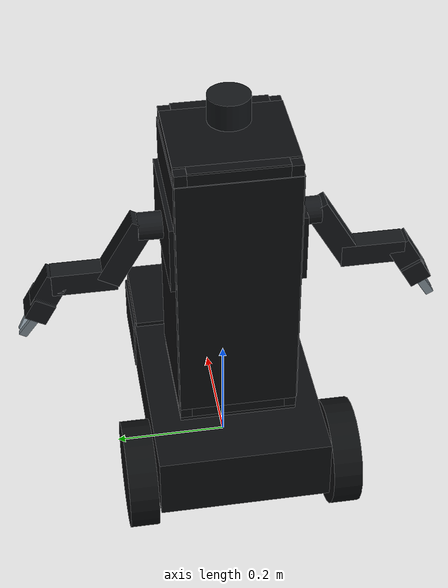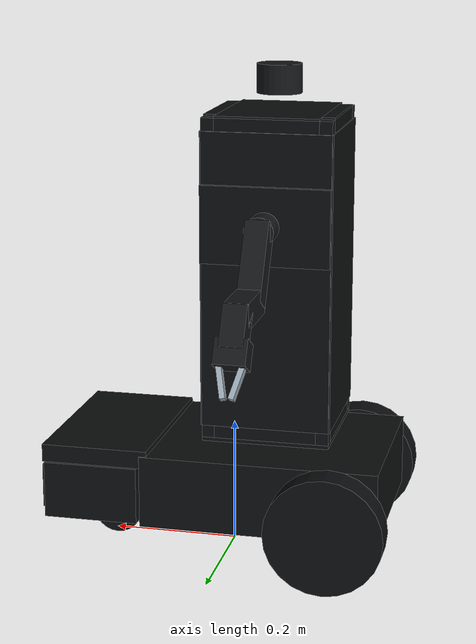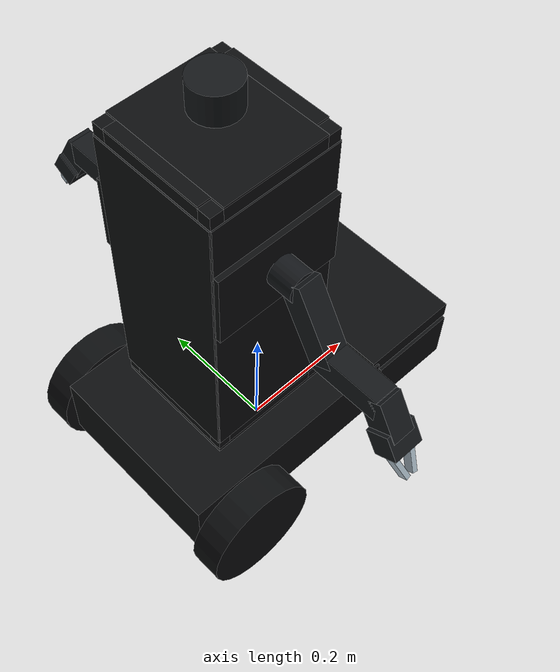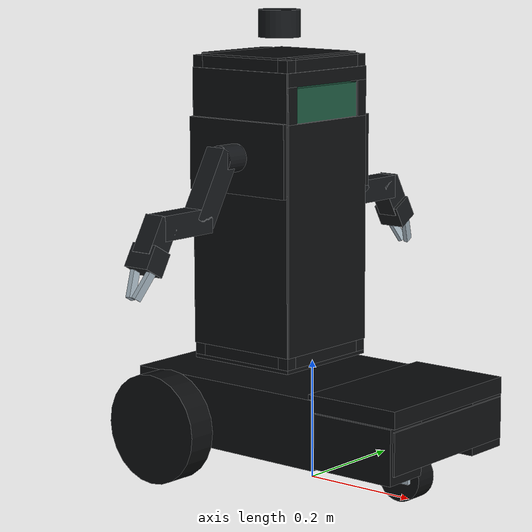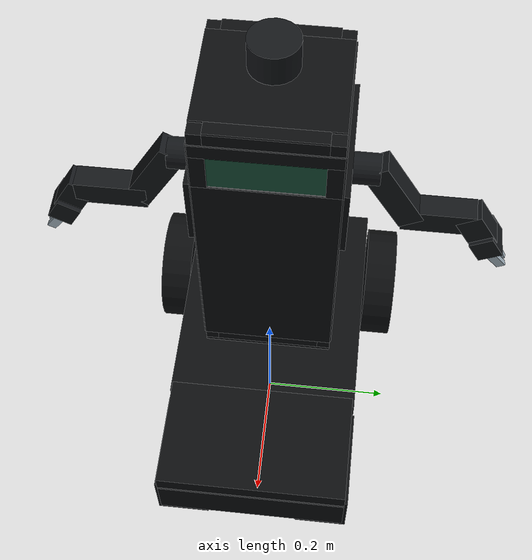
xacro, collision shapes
<?xml version="1.0"?>
<robot xmlns:xacro="http://www.ros.org/wiki/xacro" name="underbot">
  <xacro:include filename="base.xacro" />
  <xacro:underbot_base />
  <xacro:include filename="sensors.xacro" />
  <xacro:underbot_sensors />
  <xacro:include filename="arm.xacro" />
  <xacro:underbot_arm />
</robot>

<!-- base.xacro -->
<robot xmlns:xacro="http://www.ros.org/wiki/xacro">
  <xacro:macro name="underbot_base">
    <link name="base_link">
      <inertial>
        <origin xyz="-0.0598350198234 5.40649302867e-05 0.274770185411" rpy="0 0 0" />
        <mass value="14.8710078" />
        <inertia ixx="0.627048766532" ixy="8.172644062e-06" ixz="0.0129279632493" iyy="0.700954782211" iyz="-5.60167709298e-05" izz="0.256652248656" />
      </inertial>
      <visual name="base_link_visual_0">
        <origin xyz="0 0 0" rpy="0 0 0" />
        <geometry>
          <mesh filename="package://underbot_description/meshes/base_link.stl" scale="1 1 1" />
        </geometry>
        <material name="matte_black">
          <color rgba="0.045 0.05 0.055 1" />
        </material>
      </visual>
      <visual name="base_link_visual_1">
        <origin xyz="0 0 0" rpy="0 0 0" />
        <geometry>
          <mesh filename="package://underbot_description/meshes/base_link_worx_orange.stl" scale="1 1 1" />
        </geometry>
        <material name="worx_orange">
          <color rgba="0.96 0.22 0.015 1" />
        </material>
      </visual>
      <visual name="base_link_visual_2">
        <origin xyz="0 0 0" rpy="0 0 0" />
        <geometry>
          <mesh filename="package://underbot_description/meshes/base_link_servo_black.stl" scale="1 1 1" />
        </geometry>
        <material name="servo_black">
          <color rgba="0.075 0.085 0.095 1" />
        </material>
      </visual>
      <visual name="base_link_visual_3">
        <origin xyz="0 0 0" rpy="0 0 0" />
        <geometry>
          <mesh filename="package://underbot_description/meshes/base_link_control_red.stl" scale="1 1 1" />
        </geometry>
        <material name="control_red">
          <color rgba="0.65 0.015 0.015 1" />
        </material>
      </visual>
      <visual name="base_link_visual_4">
        <origin xyz="0 0 0" rpy="0 0 0" />
        <geometry>
          <mesh filename="package://underbot_description/meshes/base_link_aluminium.stl" scale="1 1 1" />
        </geometry>
        <material name="aluminium">
          <color rgba="0.62 0.68 0.72 1" />
        </material>
      </visual>
      <visual name="base_link_visual_5">
        <origin xyz="0 0 0" rpy="0 0 0" />
        <geometry>
          <mesh filename="package://underbot_description/meshes/base_link_polycarbonate.stl" scale="1 1 1" />
        </geometry>
        <material name="polycarbonate">
          <color rgba="0.38 0.55 0.6 0.5" />
        </material>
      </visual>
      <visual name="base_link_visual_6">
        <origin xyz="0 0 0" rpy="0 0 0" />
        <geometry>
          <mesh filename="package://underbot_description/meshes/base_link_pcb_green.stl" scale="1 1 1" />
        </geometry>
        <material name="pcb_green">
          <color rgba="0.1 0.32 0.23 1" />
        </material>
      </visual>
      <collision name="base_link_rear_chassis">
        <origin xyz="-0.0675 0 0.1225" rpy="0 0 0" />
        <geometry>
          <box size="0.375 0.296 0.115" />
        </geometry>
      </collision>
      <collision name="base_link_nose_side_-1">
        <origin xyz="0.2 -0.11 0.115" rpy="0 0 0" />
        <geometry>
          <box size="0.15 0.08 0.09" />
        </geometry>
      </collision>
      <collision name="base_link_nose_side_1">
        <origin xyz="0.2 0.11 0.115" rpy="0 0 0" />
        <geometry>
          <box size="0.15 0.08 0.09" />
        </geometry>
      </collision>
      <collision name="base_link_nose_upper">
        <origin xyz="0.194 0 0.174" rpy="0 0 0" />
        <geometry>
          <box size="0.17 0.29 0.028" />
        </geometry>
      </collision>
      <collision name="base_link_front_grille">
        <origin xyz="0.2775 0 0.12" rpy="0 0 0" />
        <geometry>
          <box size="0.003 0.29 0.07" />
        </geometry>
      </collision>
      <collision name="base_link_chassis_adapter">
        <origin xyz="-0.07 0 0.202" rpy="0 0 0" />
        <geometry>
          <box size="0.2 0.2 0.006" />
        </geometry>
      </collision>
      <collision name="base_link_post_-0.16000000000000003_-0.09000000000000001">
        <origin xyz="-0.16 -0.09 0.455" rpy="0 0 0" />
        <geometry>
          <box size="0.02 0.02 0.5" />
        </geometry>
      </collision>
      <collision name="base_link_post_-0.16000000000000003_0.09000000000000001">
        <origin xyz="-0.16 0.09 0.455" rpy="0 0 0" />
        <geometry>
          <box size="0.02 0.02 0.5" />
        </geometry>
      </collision>
      <collision name="base_link_post_0.020000000000000004_-0.09000000000000001">
        <origin xyz="0.02 -0.09 0.455" rpy="0 0 0" />
        <geometry>
          <box size="0.02 0.02 0.5" />
        </geometry>
      </collision>
      <collision name="base_link_post_0.020000000000000004_0.09000000000000001">
        <origin xyz="0.02 0.09 0.455" rpy="0 0 0" />
        <geometry>
          <box size="0.02 0.02 0.5" />
        </geometry>
      </collision>
      <collision name="base_link_rail_x_0_-1">
        <origin xyz="-0.07 -0.09 0.215" rpy="0 0 0" />
        <geometry>
          <box size="0.16 0.02 0.02" />
        </geometry>
      </collision>
      <collision name="base_link_rail_y_0_-1">
        <origin xyz="-0.16 0 0.215" rpy="0 0 0" />
        <geometry>
          <box size="0.02 0.16 0.02" />
        </geometry>
      </collision>
      <collision name="base_link_rail_x_0_1">
        <origin xyz="-0.07 0.09 0.215" rpy="0 0 0" />
        <geometry>
          <box size="0.16 0.02 0.02" />
        </geometry>
      </collision>
      <collision name="base_link_rail_y_0_1">
        <origin xyz="0.02 0 0.215" rpy="0 0 0" />
        <geometry>
          <box size="0.02 0.16 0.02" />
        </geometry>
      </collision>
      <collision name="base_link_floor_0_center">
        <origin xyz="-0.07 0 0.2265" rpy="0 0 0" />
        <geometry>
          <box size="0.16 0.2 0.003" />
        </geometry>
      </collision>
      <collision name="base_link_floor_0_end_-1">
        <origin xyz="-0.16 0 0.2265" rpy="0 0 0" />
        <geometry>
          <box size="0.02 0.16 0.003" />
        </geometry>
      </collision>
      <collision name="base_link_floor_0_end_1">
        <origin xyz="0.02 0 0.2265" rpy="0 0 0" />
        <geometry>
          <box size="0.02 0.16 0.003" />
        </geometry>
      </collision>
      <collision name="base_link_rail_x_1_-1">
        <origin xyz="-0.07 -0.09 0.49" rpy="0 0 0" />
        <geometry>
          <box size="0.16 0.02 0.02" />
        </geometry>
      </collision>
      <collision name="base_link_rail_y_1_-1">
        <origin xyz="-0.16 0 0.49" rpy="0 0 0" />
        <geometry>
          <box size="0.02 0.16 0.02" />
        </geometry>
      </collision>
      <collision name="base_link_rail_x_1_1">
        <origin xyz="-0.07 0.09 0.49" rpy="0 0 0" />
        <geometry>
          <box size="0.16 0.02 0.02" />
        </geometry>
      </collision>
      <collision name="base_link_rail_y_1_1">
        <origin xyz="0.02 0 0.49" rpy="0 0 0" />
        <geometry>
          <box size="0.02 0.16 0.02" />
        </geometry>
      </collision>
      <collision name="base_link_floor_1_center">
        <origin xyz="-0.07 0 0.5015" rpy="0 0 0" />
        <geometry>
          <box size="0.16 0.2 0.003" />
        </geometry>
      </collision>
      <collision name="base_link_floor_1_end_-1">
        <origin xyz="-0.16 0 0.5015" rpy="0 0 0" />
        <geometry>
          <box size="0.02 0.16 0.003" />
        </geometry>
      </collision>
      <collision name="base_link_floor_1_end_1">
        <origin xyz="0.02 0 0.5015" rpy="0 0 0" />
        <geometry>
          <box size="0.02 0.16 0.003" />
        </geometry>
      </collision>
      <collision name="base_link_rail_x_2_-1">
        <origin xyz="-0.07 -0.09 0.565" rpy="0 0 0" />
        <geometry>
          <box size="0.16 0.02 0.02" />
        </geometry>
      </collision>
      <collision name="base_link_rail_y_2_-1">
        <origin xyz="-0.16 0 0.565" rpy="0 0 0" />
        <geometry>
          <box size="0.02 0.16 0.02" />
        </geometry>
      </collision>
      <collision name="base_link_rail_x_2_1">
        <origin xyz="-0.07 0.09 0.565" rpy="0 0 0" />
        <geometry>
          <box size="0.16 0.02 0.02" />
        </geometry>
      </collision>
      <collision name="base_link_rail_y_2_1">
        <origin xyz="0.02 0 0.565" rpy="0 0 0" />
        <geometry>
          <box size="0.02 0.16 0.02" />
        </geometry>
      </collision>
      <collision name="base_link_floor_2_center">
        <origin xyz="-0.07 0 0.5765" rpy="0 0 0" />
        <geometry>
          <box size="0.16 0.2 0.003" />
        </geometry>
      </collision>
      <collision name="base_link_floor_2_end_-1">
        <origin xyz="-0.16 0 0.5765" rpy="0 0 0" />
        <geometry>
          <box size="0.02 0.16 0.003" />
        </geometry>
      </collision>
      <collision name="base_link_floor_2_end_1">
        <origin xyz="0.02 0 0.5765" rpy="0 0 0" />
        <geometry>
          <box size="0.02 0.16 0.003" />
        </geometry>
      </collision>
      <collision name="base_link_rail_x_3_-1">
        <origin xyz="-0.07 -0.09 0.695" rpy="0 0 0" />
        <geometry>
          <box size="0.16 0.02 0.02" />
        </geometry>
      </collision>
      <collision name="base_link_rail_y_3_-1">
        <origin xyz="-0.16 0 0.695" rpy="0 0 0" />
        <geometry>
          <box size="0.02 0.16 0.02" />
        </geometry>
      </collision>
      <collision name="base_link_rail_x_3_1">
        <origin xyz="-0.07 0.09 0.695" rpy="0 0 0" />
        <geometry>
          <box size="0.16 0.02 0.02" />
        </geometry>
      </collision>
      <collision name="base_link_rail_y_3_1">
        <origin xyz="0.02 0 0.695" rpy="0 0 0" />
        <geometry>
          <box size="0.02 0.16 0.02" />
        </geometry>
      </collision>
      <collision name="base_link_floor_3_center">
        <origin xyz="-0.07 0 0.7065" rpy="0 0 0" />
        <geometry>
          <box size="0.16 0.2 0.003" />
        </geometry>
      </collision>
      <collision name="base_link_floor_3_end_-1">
        <origin xyz="-0.16 0 0.7065" rpy="0 0 0" />
        <geometry>
          <box size="0.02 0.16 0.003" />
        </geometry>
      </collision>
      <collision name="base_link_floor_3_end_1">
        <origin xyz="0.02 0 0.7065" rpy="0 0 0" />
        <geometry>
          <box size="0.02 0.16 0.003" />
        </geometry>
      </collision>
      <collision name="base_link_front_door_lower">
        <origin xyz="0.031 0 0.414" rpy="0 0 0" />
        <geometry>
          <box size="0.002 0.2 0.378" />
        </geometry>
      </collision>
      <collision name="base_link_front_door_upper">
        <origin xyz="0.031 0 0.67375" rpy="0 0 0" />
        <geometry>
          <box size="0.002 0.2 0.0225" />
        </geometry>
      </collision>
      <collision name="base_link_front_door_left_strip">
        <origin xyz="0.031 0.089 0.63275" rpy="0 0 0" />
        <geometry>
          <box size="0.002 0.022 0.0595" />
        </geometry>
      </collision>
      <collision name="base_link_front_door_right_strip">
        <origin xyz="0.031 -0.089 0.63275" rpy="0 0 0" />
        <geometry>
          <box size="0.002 0.022 0.0595" />
        </geometry>
      </collision>
      <collision name="base_link_rear_door_closed">
        <origin xyz="-0.171 0 0.455" rpy="0 0 0" />
        <geometry>
          <box size="0.002 0.2 0.46" />
        </geometry>
      </collision>
      <collision name="base_link_side_-1_lower">
        <origin xyz="-0.07 -0.101 0.3575" rpy="0 0 0" />
        <geometry>
          <box size="0.2 0.002 0.265" />
        </geometry>
      </collision>
      <collision name="base_link_side_-1_upper">
        <origin xyz="-0.07 -0.101 0.6425" rpy="0 0 0" />
        <geometry>
          <box size="0.2 0.002 0.085" />
        </geometry>
      </collision>
      <collision name="base_link_side_-1_front_strip">
        <origin xyz="0.0075 -0.101 0.545" rpy="0 0 0" />
        <geometry>
          <box size="0.045 0.002 0.11" />
        </geometry>
      </collision>
      <collision name="base_link_side_-1_rear_strip">
        <origin xyz="-0.1475 -0.101 0.545" rpy="0 0 0" />
        <geometry>
          <box size="0.045 0.002 0.11" />
        </geometry>
      </collision>
      <collision name="base_link_arm_bridge_-1">
        <origin xyz="-0.07 -0.106 0.545" rpy="0 0 0" />
        <geometry>
          <box size="0.2 0.008 0.12" />
        </geometry>
      </collision>
      <collision name="base_link_side_1_lower">
        <origin xyz="-0.07 0.101 0.3575" rpy="0 0 0" />
        <geometry>
          <box size="0.2 0.002 0.265" />
        </geometry>
      </collision>
      <collision name="base_link_side_1_upper">
        <origin xyz="-0.07 0.101 0.6425" rpy="0 0 0" />
        <geometry>
          <box size="0.2 0.002 0.085" />
        </geometry>
      </collision>
      <collision name="base_link_side_1_front_strip">
        <origin xyz="0.0075 0.101 0.545" rpy="0 0 0" />
        <geometry>
          <box size="0.045 0.002 0.11" />
        </geometry>
      </collision>
      <collision name="base_link_side_1_rear_strip">
        <origin xyz="-0.1475 0.101 0.545" rpy="0 0 0" />
        <geometry>
          <box size="0.045 0.002 0.11" />
        </geometry>
      </collision>
      <collision name="base_link_arm_bridge_1">
        <origin xyz="-0.07 0.106 0.545" rpy="0 0 0" />
        <geometry>
          <box size="0.2 0.008 0.12" />
        </geometry>
      </collision>
      <collision name="base_link_noco_installed_reserve">
        <origin xyz="-0.07 0 0.343" rpy="0 0 0" />
        <geometry>
          <box size="0.07 0.152 0.222" />
        </geometry>
      </collision>
    </link>
    <link name="left_wheel">
      <inertial>
        <origin xyz="0 0 0" rpy="0 0 0" />
        <mass value="0.75" />
        <inertia ixx="0.001537859" ixy="0" ixz="0" iyy="0.002768118" iyz="-7.53316373236e-20" izz="0.001537859" />
      </inertial>
      <visual name="left_wheel_visual_0">
        <origin xyz="0 0 0" rpy="0 0 0" />
        <geometry>
          <mesh filename="package://underbot_description/meshes/left_wheel.stl" scale="1 1 1" />
        </geometry>
        <material name="matte_black">
          <color rgba="0.045 0.05 0.055 1" />
        </material>
      </visual>
      <visual name="left_wheel_visual_1">
        <origin xyz="0 0 0" rpy="0 0 0" />
        <geometry>
          <mesh filename="package://underbot_description/meshes/left_wheel_aluminium.stl" scale="1 1 1" />
        </geometry>
        <material name="aluminium">
          <color rgba="0.62 0.68 0.72 1" />
        </material>
      </visual>
      <collision name="left_wheel_rolling_contact">
        <origin xyz="0 0 0" rpy="1.57079632679 0 0" />
        <geometry>
          <cylinder radius="0.0925" length="0.05" />
        </geometry>
      </collision>
    </link>
    <link name="right_wheel">
      <inertial>
        <origin xyz="0 0 0" rpy="0 0 0" />
        <mass value="0.75" />
        <inertia ixx="0.001537859" ixy="0" ixz="0" iyy="0.002768118" iyz="-7.53316373236e-20" izz="0.001537859" />
      </inertial>
      <visual name="right_wheel_visual_0">
        <origin xyz="0 0 0" rpy="0 0 0" />
        <geometry>
          <mesh filename="package://underbot_description/meshes/right_wheel.stl" scale="1 1 1" />
        </geometry>
        <material name="matte_black">
          <color rgba="0.045 0.05 0.055 1" />
        </material>
      </visual>
      <visual name="right_wheel_visual_1">
        <origin xyz="0 0 0" rpy="0 0 0" />
        <geometry>
          <mesh filename="package://underbot_description/meshes/right_wheel_aluminium.stl" scale="1 1 1" />
        </geometry>
        <material name="aluminium">
          <color rgba="0.62 0.68 0.72 1" />
        </material>
      </visual>
      <collision name="right_wheel_rolling_contact">
        <origin xyz="0 0 0" rpy="1.57079632679 0 0" />
        <geometry>
          <cylinder radius="0.0925" length="0.05" />
        </geometry>
      </collision>
    </link>
    <link name="caster_swivel_link">
      <inertial>
        <origin xyz="-0.006 0 -0.0234" rpy="0 0 0" />
        <mass value="0.15" />
        <inertia ixx="0.000162651" ixy="0" ixz="-1.404e-05" iyy="0.000111891" iyz="0" izz="7.389e-05" />
      </inertial>
      <visual name="caster_swivel_link_visual_0">
        <origin xyz="0 0 0" rpy="0 0 0" />
        <geometry>
          <mesh filename="package://underbot_description/meshes/caster_swivel_link_aluminium.stl" scale="1 1 1" />
        </geometry>
        <material name="aluminium">
          <color rgba="0.62 0.68 0.72 1" />
        </material>
      </visual>
      <visual name="caster_swivel_link_visual_1">
        <origin xyz="0 0 0" rpy="0 0 0" />
        <geometry>
          <mesh filename="package://underbot_description/meshes/caster_swivel_link.stl" scale="1 1 1" />
        </geometry>
        <material name="matte_black">
          <color rgba="0.045 0.05 0.055 1" />
        </material>
      </visual>
      <collision name="caster_swivel_link_fork_cheek_-1">
        <origin xyz="-0.01 -0.026 -0.039" rpy="0 0 0" />
        <geometry>
          <box size="0.03 0.006 0.074" />
        </geometry>
      </collision>
      <collision name="caster_swivel_link_fork_cheek_1">
        <origin xyz="-0.01 0.026 -0.039" rpy="0 0 0" />
        <geometry>
          <box size="0.03 0.006 0.074" />
        </geometry>
      </collision>
      <collision name="caster_swivel_link_swivel_shaft">
        <origin xyz="0 0 0" rpy="0 0 0" />
        <geometry>
          <cylinder radius="0.009" length="0.03" />
        </geometry>
      </collision>
    </link>
    <link name="caster_link">
      <inertial>
        <origin xyz="0 0 0" rpy="0 0 0" />
        <mass value="0.1" />
        <inertia ixx="4.69133333333e-05" ixy="0" ixz="0" iyy="6.689e-05" iyz="-1.22321804455e-21" izz="4.69133333333e-05" />
      </inertial>
      <visual name="caster_link_visual_0">
        <origin xyz="0 0 0" rpy="0 0 0" />
        <geometry>
          <mesh filename="package://underbot_description/meshes/caster_link.stl" scale="1 1 1" />
        </geometry>
        <material name="matte_black">
          <color rgba="0.045 0.05 0.055 1" />
        </material>
      </visual>
      <visual name="caster_link_visual_1">
        <origin xyz="0 0 0" rpy="0 0 0" />
        <geometry>
          <mesh filename="package://underbot_description/meshes/caster_link_servo_black.stl" scale="1 1 1" />
        </geometry>
        <material name="servo_black">
          <color rgba="0.075 0.085 0.095 1" />
        </material>
      </visual>
      <collision name="caster_link_rolling_contact">
        <origin xyz="0 0 0" rpy="1.57079632679 0 0" />
        <geometry>
          <cylinder radius="0.04" length="0.04" />
        </geometry>
      </collision>
    </link>
    <joint name="left_wheel_joint" type="continuous">
      <parent link="base_link" />
      <child link="left_wheel" />
      <origin xyz="-0.18 0.177 0.0925" rpy="0 0 0" />
      <axis xyz="0 1 0" />
      <limit effort="2.5" velocity="4" />
      <dynamics damping=".02" friction=".02" />
    </joint>
    <joint name="right_wheel_joint" type="continuous">
      <parent link="base_link" />
      <child link="right_wheel" />
      <origin xyz="-0.18 -0.177 0.0925" rpy="0 0 0" />
      <axis xyz="0 1 0" />
      <limit effort="2.5" velocity="4" />
      <dynamics damping=".02" friction=".02" />
    </joint>
    <joint name="caster_swivel_joint" type="continuous">
      <parent link="base_link" />
      <child link="caster_swivel_link" />
      <origin xyz="0.215 0 0.11" rpy="0 0 0" />
      <axis xyz="0 0 1" />
      <limit effort="0.05" velocity="20" />
      <dynamics damping=".001" friction=".0001" />
    </joint>
    <joint name="caster_wheel_joint" type="continuous">
      <parent link="caster_swivel_link" />
      <child link="caster_link" />
      <origin xyz="-0.02 0 -0.07" rpy="0 0 0" />
      <axis xyz="0 1 0" />
      <limit effort="0.05" velocity="30" />
      <dynamics damping=".001" friction=".0001" />
    </joint>
  </xacro:macro>
</robot>

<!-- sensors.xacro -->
<robot xmlns:xacro="http://www.ros.org/wiki/xacro">
  <xacro:macro name="underbot_sensors">
    <link name="camera_mount">
      <inertial>
        <origin xyz="0.00075 0 -0.0066" rpy="0 0 0" />
        <mass value="0.97" />
        <inertia ixx="0.00139646696667" ixy="0" ixz="-0.0001037415" iyy="0.000390011133333" iyz="0" izz="0.00146769083333" />
      </inertial>
      <visual name="camera_mount_visual_0">
        <origin xyz="0 0 0" rpy="0 0 0" />
        <geometry>
          <mesh filename="package://underbot_description/meshes/camera_mount_pcb_green.stl" scale="1 1 1" />
        </geometry>
        <material name="pcb_green">
          <color rgba="0.1 0.32 0.23 1" />
        </material>
      </visual>
      <visual name="camera_mount_visual_1">
        <origin xyz="0 0 0" rpy="0 0 0" />
        <geometry>
          <mesh filename="package://underbot_description/meshes/camera_mount_aluminium.stl" scale="1 1 1" />
        </geometry>
        <material name="aluminium">
          <color rgba="0.62 0.68 0.72 1" />
        </material>
      </visual>
      <visual name="camera_mount_visual_2">
        <origin xyz="0 0 0" rpy="0 0 0" />
        <geometry>
          <mesh filename="package://underbot_description/meshes/camera_mount.stl" scale="1 1 1" />
        </geometry>
        <material name="matte_black">
          <color rgba="0.045 0.05 0.055 1" />
        </material>
      </visual>
      <visual name="camera_mount_visual_3">
        <origin xyz="0 0 0" rpy="0 0 0" />
        <geometry>
          <mesh filename="package://underbot_description/meshes/camera_mount_servo_black.stl" scale="1 1 1" />
        </geometry>
        <material name="servo_black">
          <color rgba="0.075 0.085 0.095 1" />
        </material>
      </visual>
      <collision name="camera_mount_kinect_electronics_reserve">
        <origin xyz="-0.001 0 -0.0035" rpy="0 0 0" />
        <geometry>
          <box size="0.07 0.156 0.056" />
        </geometry>
      </collision>
    </link>
    <link name="camera_optical_frame">
      <inertial>
        <origin xyz="0 0 0" rpy="0 0 0" />
        <mass value="0" />
        <inertia ixx="0" ixy="0" ixz="0" iyy="0" iyz="0" izz="0" />
      </inertial>
    </link>
    <link name="lidar_mount">
      <inertial>
        <origin xyz="0 0 0.0225" rpy="0 0 0" />
        <mass value="0.15" />
        <inertia ixx="7.125e-05" ixy="0" ixz="0" iyy="7.125e-05" iyz="0" izz="9.1875e-05" />
      </inertial>
      <visual name="lidar_mount_visual_0">
        <origin xyz="0 0 0" rpy="0 0 0" />
        <geometry>
          <mesh filename="package://underbot_description/meshes/lidar_mount_servo_black.stl" scale="1 1 1" />
        </geometry>
        <material name="servo_black">
          <color rgba="0.075 0.085 0.095 1" />
        </material>
      </visual>
      <visual name="lidar_mount_visual_1">
        <origin xyz="0 0 0" rpy="0 0 0" />
        <geometry>
          <mesh filename="package://underbot_description/meshes/lidar_mount_worx_orange.stl" scale="1 1 1" />
        </geometry>
        <material name="worx_orange">
          <color rgba="0.96 0.22 0.015 1" />
        </material>
      </visual>
      <collision name="lidar_mount_head">
        <origin xyz="0 0 0.0225" rpy="0 0 0" />
        <geometry>
          <cylinder radius="0.035" length="0.045" />
        </geometry>
      </collision>
    </link>
    <link name="lidar_scan_frame">
      <inertial>
        <origin xyz="0 0 0" rpy="0 0 0" />
        <mass value="0" />
        <inertia ixx="0" ixy="0" ixz="0" iyy="0" iyz="0" izz="0" />
      </inertial>
    </link>
    <joint name="camera_mount_joint" type="fixed">
      <parent link="base_link" />
      <child link="camera_mount" />
      <origin xyz="-0.005 0 0.635" rpy="0 0 0" />
    </joint>
    <joint name="camera_optical_joint" type="fixed">
      <parent link="camera_mount" />
      <child link="camera_optical_frame" />
      <origin xyz="0.034 0.06925 0.0065" rpy="-1.57079632679 0 -1.57079632679" />
    </joint>
    <joint name="lidar_mount_joint" type="fixed">
      <parent link="base_link" />
      <child link="lidar_mount" />
      <origin xyz="-0.07 0 0.733" rpy="0 0 0" />
    </joint>
    <joint name="lidar_scan_joint" type="fixed">
      <parent link="lidar_mount" />
      <child link="lidar_scan_frame" />
      <origin xyz="0 0 0.0225" rpy="0 0 0" />
    </joint>
  </xacro:macro>
</robot>

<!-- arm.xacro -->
<robot xmlns:xacro="http://www.ros.org/wiki/xacro">
  <xacro:macro name="underbot_arm">
    <link name="left_arm_base">
      <inertial>
        <origin xyz="0 0 0.02015" rpy="0 0 0" />
        <mass value="0.2" />
        <inertia ixx="6.08859166667e-05" ixy="0" ixz="0" iyy="5.79159166667e-05" iyz="0" izz="5.59041666667e-05" />
      </inertial>
      <visual name="left_arm_base_visual_0">
        <origin xyz="0 0 0" rpy="0 0 0" />
        <geometry>
          <mesh filename="package://underbot_description/meshes/left_arm_base_servo_black.stl" scale="1 1 1" />
        </geometry>
        <material name="servo_black">
          <color rgba="0.075 0.085 0.095 1" />
        </material>
      </visual>
      <visual name="left_arm_base_visual_1">
        <origin xyz="0 0 0" rpy="0 0 0" />
        <geometry>
          <mesh filename="package://underbot_description/meshes/left_arm_base_aluminium.stl" scale="1 1 1" />
        </geometry>
        <material name="aluminium">
          <color rgba="0.62 0.68 0.72 1" />
        </material>
      </visual>
      <collision name="left_arm_base_root">
        <origin xyz="0 0 0.022" rpy="0 0 0" />
        <geometry>
          <cylinder radius="0.023" length="0.04" />
        </geometry>
      </collision>
    </link>
    <link name="left_upper_arm">
      <inertial>
        <origin xyz="0.0371547619048 1.29071687201e-19 0" rpy="0 0 0" />
        <mass value="0.21" />
        <inertia ixx="4.684125e-05" ixy="8.47032947254e-22" ixz="0" iyy="0.000236634553571" iyz="-2.4390882083e-23" izz="0.000256723303571" />
      </inertial>
      <visual name="left_upper_arm_visual_0">
        <origin xyz="0 0 0" rpy="0 0 0" />
        <geometry>
          <mesh filename="package://underbot_description/meshes/left_upper_arm_servo_black.stl" scale="1 1 1" />
        </geometry>
        <material name="servo_black">
          <color rgba="0.075 0.085 0.095 1" />
        </material>
      </visual>
      <visual name="left_upper_arm_visual_1">
        <origin xyz="0 0 0" rpy="0 0 0" />
        <geometry>
          <mesh filename="package://underbot_description/meshes/left_upper_arm_aluminium.stl" scale="1 1 1" />
        </geometry>
        <material name="aluminium">
          <color rgba="0.62 0.68 0.72 1" />
        </material>
      </visual>
      <collision name="left_upper_arm_link_envelope">
        <origin xyz="0.0485 0 0" rpy="0 0 0" />
        <geometry>
          <box size="0.123 0.036 0.04" />
        </geometry>
      </collision>
    </link>
    <link name="left_forearm">
      <inertial>
        <origin xyz="0.0302222222222 1.50583635067e-19 0" rpy="0 0 0" />
        <mass value="0.18" />
        <inertia ixx="3.938875e-05" ixy="0" ixz="0" iyy="0.000147938194444" iyz="-2.4390882083e-23" izz="0.000163699444444" />
      </inertial>
      <visual name="left_forearm_visual_0">
        <origin xyz="0 0 0" rpy="0 0 0" />
        <geometry>
          <mesh filename="package://underbot_description/meshes/left_forearm_servo_black.stl" scale="1 1 1" />
        </geometry>
        <material name="servo_black">
          <color rgba="0.075 0.085 0.095 1" />
        </material>
      </visual>
      <visual name="left_forearm_visual_1">
        <origin xyz="0 0 0" rpy="0 0 0" />
        <geometry>
          <mesh filename="package://underbot_description/meshes/left_forearm_aluminium.stl" scale="1 1 1" />
        </geometry>
        <material name="aluminium">
          <color rgba="0.62 0.68 0.72 1" />
        </material>
      </visual>
      <collision name="left_forearm_link_envelope">
        <origin xyz="0.041 0 0" rpy="0 0 0" />
        <geometry>
          <box size="0.108 0.036 0.04" />
        </geometry>
      </collision>
    </link>
    <link name="left_wrist">
      <inertial>
        <origin xyz="0.0150192307692 2.08500417786e-19 0" rpy="0 0 0" />
        <mass value="0.13" />
        <inertia ixx="2.69679166667e-05" ixy="0" ixz="0" iyy="3.40428685897e-05" iyz="-2.4390882083e-23" izz="4.25916185897e-05" />
      </inertial>
      <visual name="left_wrist_visual_0">
        <origin xyz="0 0 0" rpy="0 0 0" />
        <geometry>
          <mesh filename="package://underbot_description/meshes/left_wrist_servo_black.stl" scale="1 1 1" />
        </geometry>
        <material name="servo_black">
          <color rgba="0.075 0.085 0.095 1" />
        </material>
      </visual>
      <visual name="left_wrist_visual_1">
        <origin xyz="0 0 0" rpy="0 0 0" />
        <geometry>
          <mesh filename="package://underbot_description/meshes/left_wrist_aluminium.stl" scale="1 1 1" />
        </geometry>
        <material name="aluminium">
          <color rgba="0.62 0.68 0.72 1" />
        </material>
      </visual>
      <collision name="left_wrist_link_envelope">
        <origin xyz="0.0185 0 0" rpy="0 0 0" />
        <geometry>
          <box size="0.063 0.036 0.04" />
        </geometry>
      </collision>
    </link>
    <link name="left_hand">
      <inertial>
        <origin xyz="0.008078125 0 -0.00421875" rpy="0 0 0" />
        <mass value="0.16" />
        <inertia ixx="2.97056770833e-05" ixy="0" ixz="2.984765625e-06" iyy="2.75263671875e-05" iyz="0" izz="2.46473567708e-05" />
      </inertial>
      <visual name="left_hand_visual_0">
        <origin xyz="0 0 0" rpy="0 0 0" />
        <geometry>
          <mesh filename="package://underbot_description/meshes/left_hand_servo_black.stl" scale="1 1 1" />
        </geometry>
        <material name="servo_black">
          <color rgba="0.075 0.085 0.095 1" />
        </material>
      </visual>
      <visual name="left_hand_visual_1">
        <origin xyz="0 0 0" rpy="0 0 0" />
        <geometry>
          <mesh filename="package://underbot_description/meshes/left_hand_aluminium.stl" scale="1 1 1" />
        </geometry>
        <material name="aluminium">
          <color rgba="0.62 0.68 0.72 1" />
        </material>
      </visual>
      <collision name="left_hand_hand_body">
        <origin xyz="0.01 0 0" rpy="0 0 0" />
        <geometry>
          <box size="0.04 0.048 0.038" />
        </geometry>
      </collision>
    </link>
    <link name="left_gripper_left">
      <inertial>
        <origin xyz="0.02 -0.0048 0" rpy="0 0 0" />
        <mass value="0.025" />
        <inertia ixx="9.91523953606e-07" ixy="1.57579425113e-06" ixz="0" iyy="7.17914271306e-06" iyz="0" izz="7.24733333333e-06" />
      </inertial>
      <visual name="left_gripper_left_visual_0">
        <origin xyz="0 0 0" rpy="0 0 0" />
        <geometry>
          <mesh filename="package://underbot_description/meshes/left_gripper_left_aluminium.stl" scale="1 1 1" />
        </geometry>
        <material name="aluminium">
          <color rgba="0.62 0.68 0.72 1" />
        </material>
      </visual>
      <collision name="left_gripper_left_jaw">
        <origin xyz="0.025 -0.006 0" rpy="0 0 -0.235544980721" />
        <geometry>
          <box size="0.0514198405287 0.008 0.014" />
        </geometry>
      </collision>
    </link>
    <link name="left_gripper_right">
      <inertial>
        <origin xyz="0.02 0.0048 0" rpy="0 0 0" />
        <mass value="0.025" />
        <inertia ixx="9.91523953606e-07" ixy="-1.57579425113e-06" ixz="0" iyy="7.17914271306e-06" iyz="0" izz="7.24733333333e-06" />
      </inertial>
      <visual name="left_gripper_right_visual_0">
        <origin xyz="0 0 0" rpy="0 0 0" />
        <geometry>
          <mesh filename="package://underbot_description/meshes/left_gripper_right_aluminium.stl" scale="1 1 1" />
        </geometry>
        <material name="aluminium">
          <color rgba="0.62 0.68 0.72 1" />
        </material>
      </visual>
      <collision name="left_gripper_right_jaw">
        <origin xyz="0.025 0.006 0" rpy="0 0 0.235544980721" />
        <geometry>
          <box size="0.0514198405287 0.008 0.014" />
        </geometry>
      </collision>
    </link>
    <link name="right_arm_base">
      <inertial>
        <origin xyz="0 0 0.02015" rpy="0 0 0" />
        <mass value="0.2" />
        <inertia ixx="6.08859166667e-05" ixy="0" ixz="0" iyy="5.79159166667e-05" iyz="0" izz="5.59041666667e-05" />
      </inertial>
      <visual name="right_arm_base_visual_0">
        <origin xyz="0 0 0" rpy="0 0 0" />
        <geometry>
          <mesh filename="package://underbot_description/meshes/right_arm_base_servo_black.stl" scale="1 1 1" />
        </geometry>
        <material name="servo_black">
          <color rgba="0.075 0.085 0.095 1" />
        </material>
      </visual>
      <visual name="right_arm_base_visual_1">
        <origin xyz="0 0 0" rpy="0 0 0" />
        <geometry>
          <mesh filename="package://underbot_description/meshes/right_arm_base_aluminium.stl" scale="1 1 1" />
        </geometry>
        <material name="aluminium">
          <color rgba="0.62 0.68 0.72 1" />
        </material>
      </visual>
      <collision name="right_arm_base_root">
        <origin xyz="0 0 0.022" rpy="0 0 0" />
        <geometry>
          <cylinder radius="0.023" length="0.04" />
        </geometry>
      </collision>
    </link>
    <link name="right_upper_arm">
      <inertial>
        <origin xyz="0.0371547619048 1.29071687201e-19 0" rpy="0 0 0" />
        <mass value="0.21" />
        <inertia ixx="4.684125e-05" ixy="8.47032947254e-22" ixz="0" iyy="0.000236634553571" iyz="-2.4390882083e-23" izz="0.000256723303571" />
      </inertial>
      <visual name="right_upper_arm_visual_0">
        <origin xyz="0 0 0" rpy="0 0 0" />
        <geometry>
          <mesh filename="package://underbot_description/meshes/right_upper_arm_servo_black.stl" scale="1 1 1" />
        </geometry>
        <material name="servo_black">
          <color rgba="0.075 0.085 0.095 1" />
        </material>
      </visual>
      <visual name="right_upper_arm_visual_1">
        <origin xyz="0 0 0" rpy="0 0 0" />
        <geometry>
          <mesh filename="package://underbot_description/meshes/right_upper_arm_aluminium.stl" scale="1 1 1" />
        </geometry>
        <material name="aluminium">
          <color rgba="0.62 0.68 0.72 1" />
        </material>
      </visual>
      <collision name="right_upper_arm_link_envelope">
        <origin xyz="0.0485 0 0" rpy="0 0 0" />
        <geometry>
          <box size="0.123 0.036 0.04" />
        </geometry>
      </collision>
    </link>
    <link name="right_forearm">
      <inertial>
        <origin xyz="0.0302222222222 1.50583635067e-19 0" rpy="0 0 0" />
        <mass value="0.18" />
        <inertia ixx="3.938875e-05" ixy="0" ixz="0" iyy="0.000147938194444" iyz="-2.4390882083e-23" izz="0.000163699444444" />
      </inertial>
      <visual name="right_forearm_visual_0">
        <origin xyz="0 0 0" rpy="0 0 0" />
        <geometry>
          <mesh filename="package://underbot_description/meshes/right_forearm_servo_black.stl" scale="1 1 1" />
        </geometry>
        <material name="servo_black">
          <color rgba="0.075 0.085 0.095 1" />
        </material>
      </visual>
      <visual name="right_forearm_visual_1">
        <origin xyz="0 0 0" rpy="0 0 0" />
        <geometry>
          <mesh filename="package://underbot_description/meshes/right_forearm_aluminium.stl" scale="1 1 1" />
        </geometry>
        <material name="aluminium">
          <color rgba="0.62 0.68 0.72 1" />
        </material>
      </visual>
      <collision name="right_forearm_link_envelope">
        <origin xyz="0.041 0 0" rpy="0 0 0" />
        <geometry>
          <box size="0.108 0.036 0.04" />
        </geometry>
      </collision>
    </link>
    <link name="right_wrist">
      <inertial>
        <origin xyz="0.0150192307692 2.08500417786e-19 0" rpy="0 0 0" />
        <mass value="0.13" />
        <inertia ixx="2.69679166667e-05" ixy="0" ixz="0" iyy="3.40428685897e-05" iyz="-2.4390882083e-23" izz="4.25916185897e-05" />
      </inertial>
      <visual name="right_wrist_visual_0">
        <origin xyz="0 0 0" rpy="0 0 0" />
        <geometry>
          <mesh filename="package://underbot_description/meshes/right_wrist_servo_black.stl" scale="1 1 1" />
        </geometry>
        <material name="servo_black">
          <color rgba="0.075 0.085 0.095 1" />
        </material>
      </visual>
      <visual name="right_wrist_visual_1">
        <origin xyz="0 0 0" rpy="0 0 0" />
        <geometry>
          <mesh filename="package://underbot_description/meshes/right_wrist_aluminium.stl" scale="1 1 1" />
        </geometry>
        <material name="aluminium">
          <color rgba="0.62 0.68 0.72 1" />
        </material>
      </visual>
      <collision name="right_wrist_link_envelope">
        <origin xyz="0.0185 0 0" rpy="0 0 0" />
        <geometry>
          <box size="0.063 0.036 0.04" />
        </geometry>
      </collision>
    </link>
    <link name="right_hand">
      <inertial>
        <origin xyz="0.008078125 0 -0.00421875" rpy="0 0 0" />
        <mass value="0.16" />
        <inertia ixx="2.97056770833e-05" ixy="0" ixz="2.984765625e-06" iyy="2.75263671875e-05" iyz="0" izz="2.46473567708e-05" />
      </inertial>
      <visual name="right_hand_visual_0">
        <origin xyz="0 0 0" rpy="0 0 0" />
        <geometry>
          <mesh filename="package://underbot_description/meshes/right_hand_servo_black.stl" scale="1 1 1" />
        </geometry>
        <material name="servo_black">
          <color rgba="0.075 0.085 0.095 1" />
        </material>
      </visual>
      <visual name="right_hand_visual_1">
        <origin xyz="0 0 0" rpy="0 0 0" />
        <geometry>
          <mesh filename="package://underbot_description/meshes/right_hand_aluminium.stl" scale="1 1 1" />
        </geometry>
        <material name="aluminium">
          <color rgba="0.62 0.68 0.72 1" />
        </material>
      </visual>
      <collision name="right_hand_hand_body">
        <origin xyz="0.01 0 0" rpy="0 0 0" />
        <geometry>
          <box size="0.04 0.048 0.038" />
        </geometry>
      </collision>
    </link>
    <link name="right_gripper_left">
      <inertial>
        <origin xyz="0.02 -0.0048 0" rpy="0 0 0" />
        <mass value="0.025" />
        <inertia ixx="9.91523953606e-07" ixy="1.57579425113e-06" ixz="0" iyy="7.17914271306e-06" iyz="0" izz="7.24733333333e-06" />
      </inertial>
      <visual name="right_gripper_left_visual_0">
        <origin xyz="0 0 0" rpy="0 0 0" />
        <geometry>
          <mesh filename="package://underbot_description/meshes/right_gripper_left_aluminium.stl" scale="1 1 1" />
        </geometry>
        <material name="aluminium">
          <color rgba="0.62 0.68 0.72 1" />
        </material>
      </visual>
      <collision name="right_gripper_left_jaw">
        <origin xyz="0.025 -0.006 0" rpy="0 0 -0.235544980721" />
        <geometry>
          <box size="0.0514198405287 0.008 0.014" />
        </geometry>
      </collision>
    </link>
    <link name="right_gripper_right">
      <inertial>
        <origin xyz="0.02 0.0048 0" rpy="0 0 0" />
        <mass value="0.025" />
        <inertia ixx="9.91523953606e-07" ixy="-1.57579425113e-06" ixz="0" iyy="7.17914271306e-06" iyz="0" izz="7.24733333333e-06" />
      </inertial>
      <visual name="right_gripper_right_visual_0">
        <origin xyz="0 0 0" rpy="0 0 0" />
        <geometry>
          <mesh filename="package://underbot_description/meshes/right_gripper_right_aluminium.stl" scale="1 1 1" />
        </geometry>
        <material name="aluminium">
          <color rgba="0.62 0.68 0.72 1" />
        </material>
      </visual>
      <collision name="right_gripper_right_jaw">
        <origin xyz="0.025 0.006 0" rpy="0 0 0.235544980721" />
        <geometry>
          <box size="0.0514198405287 0.008 0.014" />
        </geometry>
      </collision>
    </link>
    <joint name="left_arm_base_joint" type="revolute">
      <parent link="base_link" />
      <child link="left_arm_base" />
      <origin xyz="-0.07 0.108 0.545" rpy="0 -1.57079632679 -1.57079632679" />
      <axis xyz="0 0 1" />
      <limit effort="1" velocity="1" lower="-0.785398163397" upper="0.785398163397" />
      <dynamics damping=".1" friction=".02" />
    </joint>
    <joint name="left_shoulder_joint" type="revolute">
      <parent link="left_arm_base" />
      <child link="left_upper_arm" />
      <origin xyz="0 0 0.04" rpy="0 -2.61799387799 0" />
      <axis xyz="0 1 0" />
      <limit effort="1" velocity="1" lower="-0.349065850399" upper="0.349065850399" />
      <dynamics damping=".1" friction=".02" />
    </joint>
    <joint name="left_elbow_joint" type="revolute">
      <parent link="left_upper_arm" />
      <child link="left_forearm" />
      <origin xyz="0.105 0 0" rpy="0 1.0471975512 0" />
      <axis xyz="0 1 0" />
      <limit effort="1" velocity="1" lower="-0.349065850399" upper="0.349065850399" />
      <dynamics damping=".1" friction=".02" />
    </joint>
    <joint name="left_wrist_pitch_joint" type="revolute">
      <parent link="left_forearm" />
      <child link="left_wrist" />
      <origin xyz="0.09 0 0" rpy="0 -1.0471975512 0" />
      <axis xyz="0 1 0" />
      <limit effort="1" velocity="1" lower="-0.523598775598" upper="0.523598775598" />
      <dynamics damping=".1" friction=".02" />
    </joint>
    <joint name="left_wrist_roll_joint" type="revolute">
      <parent link="left_wrist" />
      <child link="left_hand" />
      <origin xyz="0.045 0 0" rpy="0 0 0" />
      <axis xyz="1 0 0" />
      <limit effort="1" velocity="1" lower="-1.57079632679" upper="1.57079632679" />
      <dynamics damping=".1" friction=".02" />
    </joint>
    <joint name="left_gripper_left_joint" type="revolute">
      <parent link="left_hand" />
      <child link="left_gripper_left" />
      <origin xyz="0.025 0.018 0" rpy="0 0 0" />
      <axis xyz="0 0 1" />
      <limit effort="0.3" velocity="1" lower="0" upper="0.6" />
      <dynamics damping=".1" friction=".02" />
    </joint>
    <joint name="left_gripper_right_joint" type="revolute">
      <parent link="left_hand" />
      <child link="left_gripper_right" />
      <origin xyz="0.025 -0.018 0" rpy="0 0 0" />
      <axis xyz="0 0 -1" />
      <limit effort="0.3" velocity="1" lower="0" upper="0.6" />
      <dynamics damping=".1" friction=".02" />
      <mimic joint="left_gripper_left_joint" multiplier="1" offset="0" />
    </joint>
    <joint name="right_arm_base_joint" type="revolute">
      <parent link="base_link" />
      <child link="right_arm_base" />
      <origin xyz="-0.07 -0.108 0.545" rpy="0 -1.57079632679 1.57079632679" />
      <axis xyz="0 0 -1" />
      <limit effort="1" velocity="1" lower="-0.785398163397" upper="0.785398163397" />
      <dynamics damping=".1" friction=".02" />
    </joint>
    <joint name="right_shoulder_joint" type="revolute">
      <parent link="right_arm_base" />
      <child link="right_upper_arm" />
      <origin xyz="0 0 0.04" rpy="0 -2.61799387799 0" />
      <axis xyz="0 1 0" />
      <limit effort="1" velocity="1" lower="-0.349065850399" upper="0.349065850399" />
      <dynamics damping=".1" friction=".02" />
    </joint>
    <joint name="right_elbow_joint" type="revolute">
      <parent link="right_upper_arm" />
      <child link="right_forearm" />
      <origin xyz="0.105 0 0" rpy="0 1.0471975512 0" />
      <axis xyz="0 1 0" />
      <limit effort="1" velocity="1" lower="-0.349065850399" upper="0.349065850399" />
      <dynamics damping=".1" friction=".02" />
    </joint>
    <joint name="right_wrist_pitch_joint" type="revolute">
      <parent link="right_forearm" />
      <child link="right_wrist" />
      <origin xyz="0.09 0 0" rpy="0 -1.0471975512 0" />
      <axis xyz="0 1 0" />
      <limit effort="1" velocity="1" lower="-0.523598775598" upper="0.523598775598" />
      <dynamics damping=".1" friction=".02" />
    </joint>
    <joint name="right_wrist_roll_joint" type="revolute">
      <parent link="right_wrist" />
      <child link="right_hand" />
      <origin xyz="0.045 0 0" rpy="0 0 0" />
      <axis xyz="-1 0 0" />
      <limit effort="1" velocity="1" lower="-1.57079632679" upper="1.57079632679" />
      <dynamics damping=".1" friction=".02" />
    </joint>
    <joint name="right_gripper_left_joint" type="revolute">
      <parent link="right_hand" />
      <child link="right_gripper_left" />
      <origin xyz="0.025 0.018 0" rpy="0 0 0" />
      <axis xyz="0 0 1" />
      <limit effort="0.3" velocity="1" lower="0" upper="0.6" />
      <dynamics damping=".1" friction=".02" />
    </joint>
    <joint name="right_gripper_right_joint" type="revolute">
      <parent link="right_hand" />
      <child link="right_gripper_right" />
      <origin xyz="0.025 -0.018 0" rpy="0 0 0" />
      <axis xyz="0 0 -1" />
      <limit effort="0.3" velocity="1" lower="0" upper="0.6" />
      <dynamics damping=".1" friction=".02" />
      <mimic joint="right_gripper_left_joint" multiplier="1" offset="0" />
    </joint>
  </xacro:macro>
</robot>
